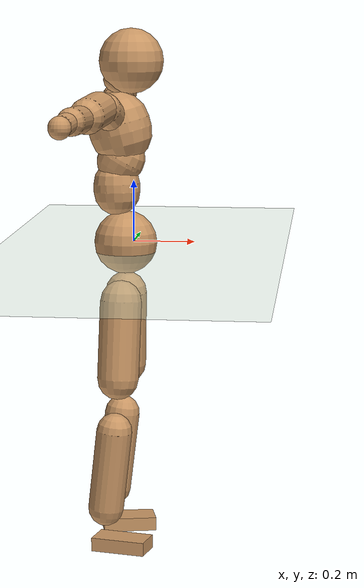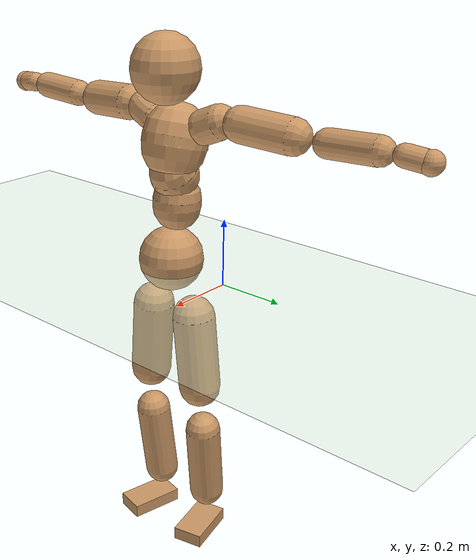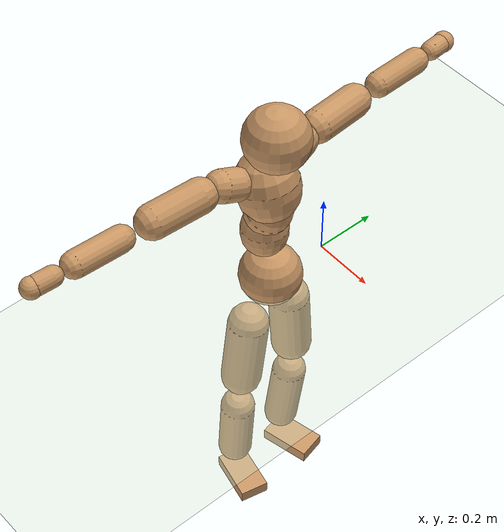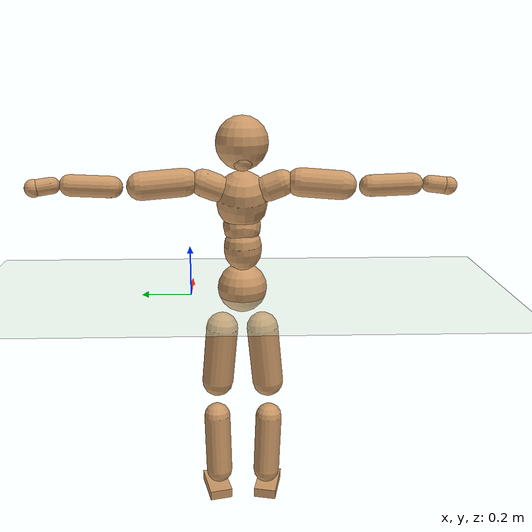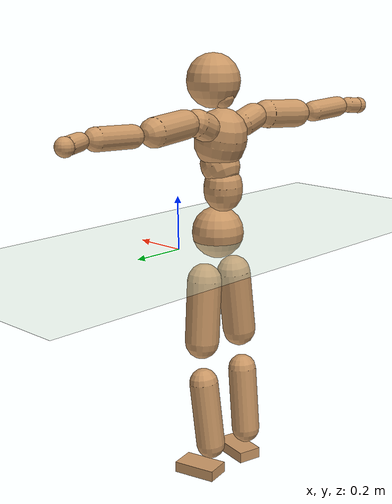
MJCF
<mujoco model="humanoid">
  <compiler coordinate="local" angle="radian"/>
  <default>
    <joint damping="0.0" armature="0.01" stiffness="0.0" limited="true"/>
    <geom conaffinity="1" condim="3" contype="7" margin="0.001" rgba="0.8 0.6 .4 1"/>
  </default>
  <asset>
    <texture type="skybox" builtin="gradient" rgb1=".4 .5 .6" rgb2="0 0 0" width="100" height="100"/>
    <texture builtin="flat" height="1278" mark="cross" markrgb="1 1 1" name="texgeom" random="0.01" rgb1="0.8 0.6 0.4" rgb2="0.8 0.6 0.4" type="cube" width="127"/>
    <texture builtin="checker" height="100" name="texplane" rgb1="0 0 0" rgb2="0.8 0.8 0.8" type="2d" width="100"/>
    <material name="MatPlane" reflectance="0.5" shininess="1" specular="1" texrepeat="60 60" texture="texplane"/>
    <material name="geom" texture="texgeom" texuniform="true"/>
  </asset>
  <worldbody>
    <light cutoff="100" diffuse="1 1 1" dir="-0 0 -1.3" directional="true" exponent="1" pos="0 0 1.3" specular=".1 .1 .1"/>
    <geom conaffinity="1" condim="3" name="floor" pos="0 0 0" rgba="0.8 0.9 0.8 1" size="100 100 .2" type="plane" material="MatPlane"/>
    <body name="Pelvis" pos="-0.0012 -0.2079 0.0291">
      <freejoint name="Pelvis"/>
      <geom type="sphere" contype="1" conaffinity="1" density="500" size="0.0998" pos="0.0000 0.0000 0.0000" name="Pelvis"/>
      <body name="L_Hip" pos="-0.0073 0.0772 -0.0942">
        <joint name="L_Hip_x" type="hinge" pos="0 0 0" axis="1 0 0" stiffness="800" damping="80" armature="0.02" range="-180.0000 180.0000"/>
        <joint name="L_Hip_y" type="hinge" pos="0 0 0" axis="0 1 0" stiffness="800" damping="80" armature="0.02" range="-180.0000 180.0000"/>
        <joint name="L_Hip_z" type="hinge" pos="0 0 0" axis="0 0 1" stiffness="800" damping="80" armature="0.02" range="-180.0000 180.0000"/>
        <geom type="capsule" contype="1" conaffinity="1" density="500" fromto="-0.0015 0.0070 -0.0807 -0.0062 0.0281 -0.3227" size="0.0662" name="L_Hip"/>
        <body name="L_Knee" pos="-0.0077 0.0351 -0.4033">
          <joint name="L_Knee_x" type="hinge" pos="0 0 0" axis="1 0 0" stiffness="800" damping="80" armature="0.02" range="-180.0000 180.0000"/>
          <joint name="L_Knee_y" type="hinge" pos="0 0 0" axis="0 1 0" stiffness="800" damping="80" armature="0.02" range="-180.0000 180.0000"/>
          <joint name="L_Knee_z" type="hinge" pos="0 0 0" axis="0 0 1" stiffness="800" damping="80" armature="0.02" range="-180.0000 180.0000"/>
          <geom type="capsule" contype="1" conaffinity="1" density="500" fromto="-0.0098 -0.0023 -0.0854 -0.0391 -0.0092 -0.3418" size="0.0563" name="L_Knee"/>
          <body name="L_Ankle" pos="-0.0489 -0.0114 -0.4272">
            <joint name="L_Ankle_x" type="hinge" pos="0 0 0" axis="1 0 0" stiffness="800" damping="80" armature="0.02" range="-180.0000 180.0000"/>
            <joint name="L_Ankle_y" type="hinge" pos="0 0 0" axis="0 1 0" stiffness="800" damping="80" armature="0.02" range="-180.0000 180.0000"/>
            <joint name="L_Ankle_z" type="hinge" pos="0 0 0" axis="0 0 1" stiffness="800" damping="80" armature="0.02" range="-180.0000 180.0000"/>
            <geom type="box" contype="1" conaffinity="1" density="500" pos="0.0600 0.0138 -0.0302" size="0.0853 0.0487 0.0215" quat="0.9936 0.0000 0.0000 0.1126" name="L_Ankle"/>
            <body name="L_Toe" pos="0.12 0.0275 -0.0604">
              <joint name="L_Toe_x" type="hinge" pos="0 0 0" axis="1 0 0" stiffness="500" damping="50" armature="0.02" range="-180.0000 180.0000"/>
              <joint name="L_Toe_y" type="hinge" pos="0 0 0" axis="0 1 0" stiffness="500" damping="50" armature="0.02" range="-180.0000 180.0000"/>
              <joint name="L_Toe_z" type="hinge" pos="0 0 0" axis="0 0 1" stiffness="500" damping="50" armature="0.02" range="-180.0000 180.0000"/>
              <geom type="box" contype="1" conaffinity="1" density="500" pos="0.0000 0.0000 0.0300" size="0.001 0.0024 0.0011" quat="0.9930 0.0000 0.0000 0.1185" name="L_Toe"/>
            </body>
          </body>
        </body>
      </body>
      <body name="R_Hip" pos="-0.0035 -0.0748 -0.0936">
        <joint name="R_Hip_x" type="hinge" pos="0 0 0" axis="1 0 0" stiffness="800" damping="80" armature="0.02" range="-180.0000 180.0000"/>
        <joint name="R_Hip_y" type="hinge" pos="0 0 0" axis="0 1 0" stiffness="800" damping="80" armature="0.02" range="-180.0000 180.0000"/>
        <joint name="R_Hip_z" type="hinge" pos="0 0 0" axis="0 0 1" stiffness="800" damping="80" armature="0.02" range="-180.0000 180.0000"/>
        <geom type="capsule" contype="1" conaffinity="1" density="500" fromto="-0.0021 -0.0085 -0.0819 -0.0084 -0.0339 -0.3276" size="0.0653" name="R_Hip"/>
        <body name="R_Knee" pos="-0.0105 -0.0424 -0.4096">
          <joint name="R_Knee_x" type="hinge" pos="0 0 0" axis="1 0 0" stiffness="800" damping="80" armature="0.02" range="-180.0000 180.0000"/>
          <joint name="R_Knee_y" type="hinge" pos="0 0 0" axis="0 1 0" stiffness="800" damping="80" armature="0.02" range="-180.0000 180.0000"/>
          <joint name="R_Knee_z" type="hinge" pos="0 0 0" axis="0 0 1" stiffness="800" damping="80" armature="0.02" range="-180.0000 180.0000"/>
          <geom type="capsule" contype="1" conaffinity="1" density="500" fromto="-0.0094 0.0029 -0.0855 -0.0375 0.0115 -0.3420" size="0.0564" name="R_Knee"/>
          <body name="R_Ankle" pos="-0.0469 0.0143 -0.4276">
            <joint name="R_Ankle_x" type="hinge" pos="0 0 0" axis="1 0 0" stiffness="800" damping="80" armature="0.02" range="-180.0000 180.0000"/>
            <joint name="R_Ankle_y" type="hinge" pos="0 0 0" axis="0 1 0" stiffness="800" damping="80" armature="0.02" range="-180.0000 180.0000"/>
            <joint name="R_Ankle_z" type="hinge" pos="0 0 0" axis="0 0 1" stiffness="800" damping="80" armature="0.02" range="-180.0000 180.0000"/>
            <geom type="box" contype="1" conaffinity="1" density="500" pos="0.0620 -0.0136 -0.0259" size="0.0868 0.0478 0.0216" quat="0.9942 0.0000 0.0000 -0.1080" name="R_Ankle"/>
            <body name="R_Toe" pos="0.1239 -0.0272 -0.0517">
              <joint name="R_Toe_x" type="hinge" pos="0 0 0" axis="1 0 0" stiffness="500" damping="50" armature="0.02" range="-180.0000 180.0000"/>
              <joint name="R_Toe_y" type="hinge" pos="0 0 0" axis="0 1 0" stiffness="500" damping="50" armature="0.02" range="-180.0000 180.0000"/>
              <joint name="R_Toe_z" type="hinge" pos="0 0 0" axis="0 0 1" stiffness="500" damping="50" armature="0.02" range="-180.0000 180.0000"/>
              <geom type="box" contype="1" conaffinity="1" density="500" pos="0.0000 0.0000 0.0282" size="0.0009 0.0024 0.0012" quat="0.9951 0.0000 0.0000 -0.0988" name="R_Toe"/>
            </body>
          </body>
        </body>
      </body>
      <body name="Torso" pos="-0.026 -0.0029 0.1084">
        <joint name="Torso_x" type="hinge" pos="0 0 0" axis="1 0 0" stiffness="1000" damping="100" armature="0.02" range="-180.0000 180.0000"/>
        <joint name="Torso_y" type="hinge" pos="0 0 0" axis="0 1 0" stiffness="1000" damping="100" armature="0.02" range="-180.0000 180.0000"/>
        <joint name="Torso_z" type="hinge" pos="0 0 0" axis="0 0 1" stiffness="1000" damping="100" armature="0.02" range="-180.0000 180.0000"/>
        <geom type="capsule" contype="1" conaffinity="1" density="500" fromto="-0.0024 0.0024 0.0764 -0.0016 0.0016 0.0509" size="0.0737" name="Torso"/>
        <body name="Spine" pos="-0.004 0.004 0.1273">
          <joint name="Spine_x" type="hinge" pos="0 0 0" axis="1 0 0" stiffness="1000" damping="100" armature="0.02" range="-180.0000 180.0000"/>
          <joint name="Spine_y" type="hinge" pos="0 0 0" axis="0 1 0" stiffness="1000" damping="100" armature="0.02" range="-180.0000 180.0000"/>
          <joint name="Spine_z" type="hinge" pos="0 0 0" axis="0 0 1" stiffness="1000" damping="100" armature="0.02" range="-180.0000 180.0000"/>
          <geom type="capsule" contype="1" conaffinity="1" density="500" fromto="0.0181 0.0008 0.0302 0.0121 0.0006 0.0201" size="0.0737" name="Spine"/>
          <body name="Chest" pos="0.0302 0.0014 0.0503">
            <joint name="Chest_x" type="hinge" pos="0 0 0" axis="1 0 0" stiffness="1000" damping="100" armature="0.02" range="-180.0000 180.0000"/>
            <joint name="Chest_y" type="hinge" pos="0 0 0" axis="0 1 0" stiffness="1000" damping="100" armature="0.02" range="-180.0000 180.0000"/>
            <joint name="Chest_z" type="hinge" pos="0 0 0" axis="0 0 1" stiffness="1000" damping="100" armature="0.02" range="-180.0000 180.0000"/>
            <geom type="capsule" contype="1" conaffinity="1" density="500" fromto="-0.0230 -0.0011 0.0898 -0.0153 -0.0007 0.0599" size="0.0984" name="Chest"/>
            <body name="Neck" pos="-0.0395 -0.0037 0.2138">
              <joint name="Neck_x" type="hinge" pos="0 0 0" axis="1 0 0" stiffness="500" damping="50" armature="0.02" range="-180.0000 180.0000"/>
              <joint name="Neck_y" type="hinge" pos="0 0 0" axis="0 1 0" stiffness="500" damping="50" armature="0.02" range="-180.0000 180.0000"/>
              <joint name="Neck_z" type="hinge" pos="0 0 0" axis="0 0 1" stiffness="500" damping="50" armature="0.02" range="-180.0000 180.0000"/>
              <geom type="capsule" contype="1" conaffinity="1" density="500" fromto="0.0113 0.0005 0.0140 0.0454 0.0021 0.0561" size="0.0425" name="Neck"/>
              <body name="Head" pos="0.0567 0.0026 0.0702">
                <joint name="Head_x" type="hinge" pos="0 0 0" axis="1 0 0" stiffness="500" damping="50" armature="0.02" range="-180.0000 180.0000"/>
                <joint name="Head_y" type="hinge" pos="0 0 0" axis="0 1 0" stiffness="500" damping="50" armature="0.02" range="-180.0000 180.0000"/>
                <joint name="Head_z" type="hinge" pos="0 0 0" axis="0 0 1" stiffness="500" damping="50" armature="0.02" range="-180.0000 180.0000"/>
                <geom type="sphere" contype="1" conaffinity="1" density="500" size="0.1018" pos="0.0000 0.0000 0.0000" name="Head"/>
              </body>
            </body>
            <body name="L_Thorax" pos="-0.0352 0.0777 0.1183">
              <joint name="L_Thorax_x" type="hinge" pos="0 0 0" axis="1 0 0" stiffness="500" damping="50" armature="0.02" range="-180.0000 180.0000"/>
              <joint name="L_Thorax_y" type="hinge" pos="0 0 0" axis="0 1 0" stiffness="500" damping="50" armature="0.02" range="-180.0000 180.0000"/>
              <joint name="L_Thorax_z" type="hinge" pos="0 0 0" axis="0 0 1" stiffness="500" damping="50" armature="0.02" range="-180.0000 180.0000"/>
              <geom type="capsule" contype="1" conaffinity="1" density="500" fromto="-0.0020 0.0171 0.0069 -0.0079 0.0683 0.0278" size="0.0518" name="L_Thorax"/>
              <body name="L_Shoulder" pos="-0.0099 0.0853 0.0347">
                <joint name="L_Shoulder_x" type="hinge" pos="0 0 0" axis="1 0 0" stiffness="500" damping="50" armature="0.02" range="-720.0000 720.0000"/>
                <joint name="L_Shoulder_y" type="hinge" pos="0 0 0" axis="0 1 0" stiffness="500" damping="50" armature="0.02" range="-720.0000 720.0000"/>
                <joint name="L_Shoulder_z" type="hinge" pos="0 0 0" axis="0 0 1" stiffness="500" damping="50" armature="0.02" range="-720.0000 720.0000"/>
                <geom type="capsule" contype="1" conaffinity="1" density="500" fromto="-0.0064 0.0538 -0.0034 -0.0256 0.2152 -0.0136" size="0.0529" name="L_Shoulder"/>
                <body name="L_Elbow" pos="-0.032 0.269 -0.017">
                  <joint name="L_Elbow_x" type="hinge" pos="0 0 0" axis="1 0 0" stiffness="500" damping="50" armature="0.02" range="-720.0000 720.0000"/>
                  <joint name="L_Elbow_y" type="hinge" pos="0 0 0" axis="0 1 0" stiffness="500" damping="50" armature="0.02" range="-720.0000 720.0000"/>
                  <joint name="L_Elbow_z" type="hinge" pos="0 0 0" axis="0 0 1" stiffness="500" damping="50" armature="0.02" range="-720.0000 720.0000"/>
                  <geom type="capsule" contype="1" conaffinity="1" density="500" fromto="0.0000 0.0509 0.0023 0.0001 0.2038 0.0093" size="0.0406" name="L_Elbow"/>
                  <body name="L_Wrist" pos="0.0002 0.2547 0.0117">
                    <joint name="L_Wrist_x" type="hinge" pos="0 0 0" axis="1 0 0" stiffness="300" damping="30" armature="0.02" range="-180.0000 180.0000"/>
                    <joint name="L_Wrist_y" type="hinge" pos="0 0 0" axis="0 1 0" stiffness="300" damping="30" armature="0.02" range="-180.0000 180.0000"/>
                    <joint name="L_Wrist_z" type="hinge" pos="0 0 0" axis="0 0 1" stiffness="300" damping="30" armature="0.02" range="-180.0000 180.0000"/>
                    <geom type="capsule" contype="1" conaffinity="1" density="500" fromto="-0.0027 0.0165 -0.0020 -0.0110 0.0659 -0.0082" size="0.031" name="L_Wrist"/>
                    <body name="L_Hand" pos="-0.0137 0.0823 -0.0102">
                      <joint name="L_Hand_x" type="hinge" pos="0 0 0" axis="1 0 0" stiffness="300" damping="30" armature="0.02" range="-180.0000 180.0000"/>
                      <joint name="L_Hand_y" type="hinge" pos="0 0 0" axis="0 1 0" stiffness="300" damping="30" armature="0.02" range="-180.0000 180.0000"/>
                      <joint name="L_Hand_z" type="hinge" pos="0 0 0" axis="0 0 1" stiffness="300" damping="30" armature="0.02" range="-180.0000 180.0000"/>
                      <geom type="sphere" contype="1" conaffinity="1" density="500" size="0.0332" pos="0.0000 0.0000 0.0000" name="L_Hand"/>
                    </body>
                  </body>
                </body>
              </body>
            </body>
            <body name="R_Thorax" pos="-0.0401 -0.0794 0.1169">
              <joint name="R_Thorax_x" type="hinge" pos="0 0 0" axis="1 0 0" stiffness="500" damping="50" armature="0.02" range="-180.0000 180.0000"/>
              <joint name="R_Thorax_y" type="hinge" pos="0 0 0" axis="0 1 0" stiffness="500" damping="50" armature="0.02" range="-180.0000 180.0000"/>
              <joint name="R_Thorax_z" type="hinge" pos="0 0 0" axis="0 0 1" stiffness="500" damping="50" armature="0.02" range="-180.0000 180.0000"/>
              <geom type="capsule" contype="1" conaffinity="1" density="500" fromto="-0.0020 -0.0175 0.0070 -0.0079 -0.0702 0.0281" size="0.0504" name="R_Thorax"/>
              <body name="R_Shoulder" pos="-0.0099 -0.0877 0.0351">
                <joint name="R_Shoulder_x" type="hinge" pos="0 0 0" axis="1 0 0" stiffness="500" damping="50" armature="0.02" range="-720.0000 720.0000"/>
                <joint name="R_Shoulder_y" type="hinge" pos="0 0 0" axis="0 1 0" stiffness="500" damping="50" armature="0.02" range="-720.0000 720.0000"/>
                <joint name="R_Shoulder_z" type="hinge" pos="0 0 0" axis="0 0 1" stiffness="500" damping="50" armature="0.02" range="-720.0000 720.0000"/>
                <geom type="capsule" contype="1" conaffinity="1" density="500" fromto="-0.0051 -0.0519 -0.0031 -0.0206 -0.2076 -0.0126" size="0.054" name="R_Shoulder"/>
                <body name="R_Elbow" pos="-0.0257 -0.2595 -0.0157">
                  <joint name="R_Elbow_x" type="hinge" pos="0 0 0" axis="1 0 0" stiffness="500" damping="50" armature="0.02" range="-720.0000 720.0000"/>
                  <joint name="R_Elbow_y" type="hinge" pos="0 0 0" axis="0 1 0" stiffness="500" damping="50" armature="0.02" range="-720.0000 720.0000"/>
                  <joint name="R_Elbow_z" type="hinge" pos="0 0 0" axis="0 0 1" stiffness="500" damping="50" armature="0.02" range="-720.0000 720.0000"/>
                  <geom type="capsule" contype="1" conaffinity="1" density="500" fromto="-0.0006 -0.0520 0.0022 -0.0023 -0.2081 0.0086" size="0.0408" name="R_Elbow"/>
                  <body name="R_Wrist" pos="-0.0029 -0.2601 0.0108">
                    <joint name="R_Wrist_x" type="hinge" pos="0 0 0" axis="1 0 0" stiffness="300" damping="30" armature="0.02" range="-180.0000 180.0000"/>
                    <joint name="R_Wrist_y" type="hinge" pos="0 0 0" axis="0 1 0" stiffness="300" damping="30" armature="0.02" range="-180.0000 180.0000"/>
                    <joint name="R_Wrist_z" type="hinge" pos="0 0 0" axis="0 0 1" stiffness="300" damping="30" armature="0.02" range="-180.0000 180.0000"/>
                    <geom type="capsule" contype="1" conaffinity="1" density="500" fromto="-0.0021 -0.0164 -0.0015 -0.0085 -0.0654 -0.0060" size="0.0314" name="R_Wrist"/>
                    <body name="R_Hand" pos="-0.0106 -0.0818 -0.0075">
                      <joint name="R_Hand_x" type="hinge" pos="0 0 0" axis="1 0 0" stiffness="300" damping="30" armature="0.02" range="-180.0000 180.0000"/>
                      <joint name="R_Hand_y" type="hinge" pos="0 0 0" axis="0 1 0" stiffness="300" damping="30" armature="0.02" range="-180.0000 180.0000"/>
                      <joint name="R_Hand_z" type="hinge" pos="0 0 0" axis="0 0 1" stiffness="300" damping="30" armature="0.02" range="-180.0000 180.0000"/>
                      <geom type="sphere" contype="1" conaffinity="1" density="500" size="0.0329" pos="0.0000 0.0000 0.0000" name="R_Hand"/>
                    </body>
                  </body>
                </body>
              </body>
            </body>
          </body>
        </body>
      </body>
    </body>
  </worldbody>
  <actuator>
    <motor name="L_Hip_x" joint="L_Hip_x" gear="500"/>
    <motor name="L_Hip_y" joint="L_Hip_y" gear="500"/>
    <motor name="L_Hip_z" joint="L_Hip_z" gear="500"/>
    <motor name="L_Knee_x" joint="L_Knee_x" gear="500"/>
    <motor name="L_Knee_y" joint="L_Knee_y" gear="500"/>
    <motor name="L_Knee_z" joint="L_Knee_z" gear="500"/>
    <motor name="L_Ankle_x" joint="L_Ankle_x" gear="500"/>
    <motor name="L_Ankle_y" joint="L_Ankle_y" gear="500"/>
    <motor name="L_Ankle_z" joint="L_Ankle_z" gear="500"/>
    <motor name="L_Toe_x" joint="L_Toe_x" gear="500"/>
    <motor name="L_Toe_y" joint="L_Toe_y" gear="500"/>
    <motor name="L_Toe_z" joint="L_Toe_z" gear="500"/>
    <motor name="R_Hip_x" joint="R_Hip_x" gear="500"/>
    <motor name="R_Hip_y" joint="R_Hip_y" gear="500"/>
    <motor name="R_Hip_z" joint="R_Hip_z" gear="500"/>
    <motor name="R_Knee_x" joint="R_Knee_x" gear="500"/>
    <motor name="R_Knee_y" joint="R_Knee_y" gear="500"/>
    <motor name="R_Knee_z" joint="R_Knee_z" gear="500"/>
    <motor name="R_Ankle_x" joint="R_Ankle_x" gear="500"/>
    <motor name="R_Ankle_y" joint="R_Ankle_y" gear="500"/>
    <motor name="R_Ankle_z" joint="R_Ankle_z" gear="500"/>
    <motor name="R_Toe_x" joint="R_Toe_x" gear="500"/>
    <motor name="R_Toe_y" joint="R_Toe_y" gear="500"/>
    <motor name="R_Toe_z" joint="R_Toe_z" gear="500"/>
    <motor name="Torso_x" joint="Torso_x" gear="500"/>
    <motor name="Torso_y" joint="Torso_y" gear="500"/>
    <motor name="Torso_z" joint="Torso_z" gear="500"/>
    <motor name="Spine_x" joint="Spine_x" gear="500"/>
    <motor name="Spine_y" joint="Spine_y" gear="500"/>
    <motor name="Spine_z" joint="Spine_z" gear="500"/>
    <motor name="Chest_x" joint="Chest_x" gear="500"/>
    <motor name="Chest_y" joint="Chest_y" gear="500"/>
    <motor name="Chest_z" joint="Chest_z" gear="500"/>
    <motor name="Neck_x" joint="Neck_x" gear="500"/>
    <motor name="Neck_y" joint="Neck_y" gear="500"/>
    <motor name="Neck_z" joint="Neck_z" gear="500"/>
    <motor name="Head_x" joint="Head_x" gear="500"/>
    <motor name="Head_y" joint="Head_y" gear="500"/>
    <motor name="Head_z" joint="Head_z" gear="500"/>
    <motor name="L_Thorax_x" joint="L_Thorax_x" gear="500"/>
    <motor name="L_Thorax_y" joint="L_Thorax_y" gear="500"/>
    <motor name="L_Thorax_z" joint="L_Thorax_z" gear="500"/>
    <motor name="L_Shoulder_x" joint="L_Shoulder_x" gear="500"/>
    <motor name="L_Shoulder_y" joint="L_Shoulder_y" gear="500"/>
    <motor name="L_Shoulder_z" joint="L_Shoulder_z" gear="500"/>
    <motor name="L_Elbow_x" joint="L_Elbow_x" gear="500"/>
    <motor name="L_Elbow_y" joint="L_Elbow_y" gear="500"/>
    <motor name="L_Elbow_z" joint="L_Elbow_z" gear="500"/>
    <motor name="L_Wrist_x" joint="L_Wrist_x" gear="500"/>
    <motor name="L_Wrist_y" joint="L_Wrist_y" gear="500"/>
    <motor name="L_Wrist_z" joint="L_Wrist_z" gear="500"/>
    <motor name="L_Hand_x" joint="L_Hand_x" gear="500"/>
    <motor name="L_Hand_y" joint="L_Hand_y" gear="500"/>
    <motor name="L_Hand_z" joint="L_Hand_z" gear="500"/>
    <motor name="R_Thorax_x" joint="R_Thorax_x" gear="500"/>
    <motor name="R_Thorax_y" joint="R_Thorax_y" gear="500"/>
    <motor name="R_Thorax_z" joint="R_Thorax_z" gear="500"/>
    <motor name="R_Shoulder_x" joint="R_Shoulder_x" gear="500"/>
    <motor name="R_Shoulder_y" joint="R_Shoulder_y" gear="500"/>
    <motor name="R_Shoulder_z" joint="R_Shoulder_z" gear="500"/>
    <motor name="R_Elbow_x" joint="R_Elbow_x" gear="500"/>
    <motor name="R_Elbow_y" joint="R_Elbow_y" gear="500"/>
    <motor name="R_Elbow_z" joint="R_Elbow_z" gear="500"/>
    <motor name="R_Wrist_x" joint="R_Wrist_x" gear="500"/>
    <motor name="R_Wrist_y" joint="R_Wrist_y" gear="500"/>
    <motor name="R_Wrist_z" joint="R_Wrist_z" gear="500"/>
    <motor name="R_Hand_x" joint="R_Hand_x" gear="500"/>
    <motor name="R_Hand_y" joint="R_Hand_y" gear="500"/>
    <motor name="R_Hand_z" joint="R_Hand_z" gear="500"/>
  </actuator>
  <contact>
    <exclude body1="Torso" body2="Chest"/>
    <exclude body1="Head" body2="Chest"/>
    <exclude body1="R_Knee" body2="R_Toe"/>
    <exclude body1="R_Knee" body2="L_Ankle"/>
    <exclude body1="R_Knee" body2="L_Toe"/>
    <exclude body1="L_Knee" body2="L_Toe"/>
    <exclude body1="L_Knee" body2="R_Ankle"/>
    <exclude body1="L_Knee" body2="R_Toe"/>
    <exclude body1="L_Shoulder" body2="Chest"/>
    <exclude body1="R_Shoulder" body2="Chest"/>
  </contact>
  <sensor/>
  <size njmax="700" nconmax="700"/>
</mujoco>
